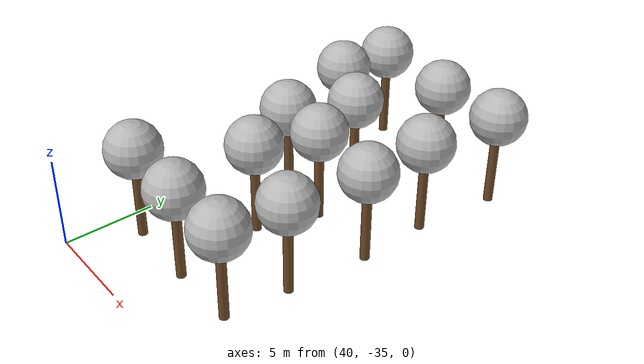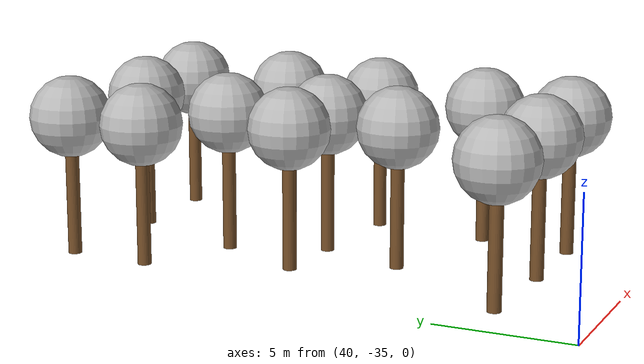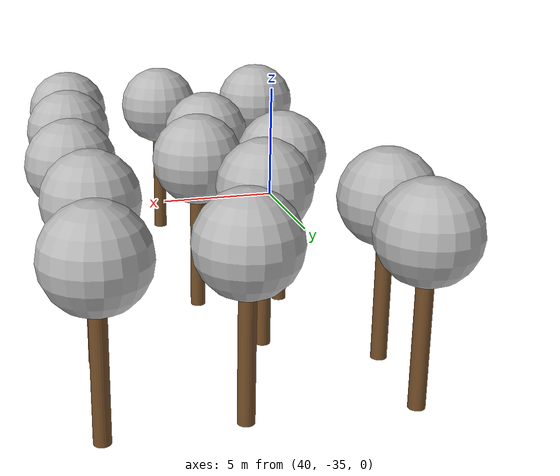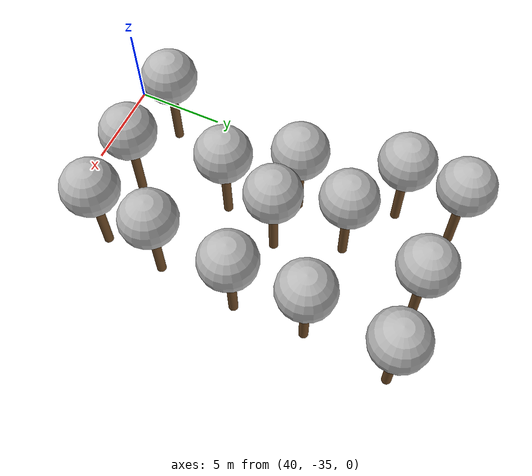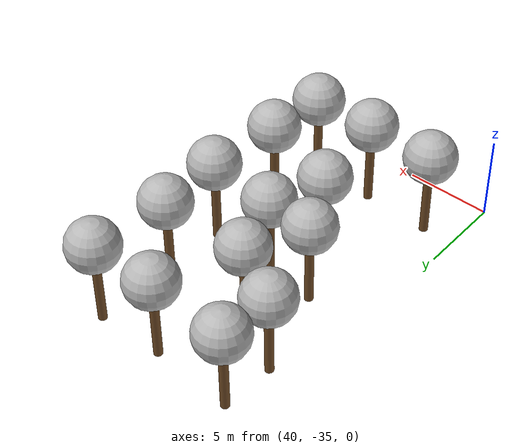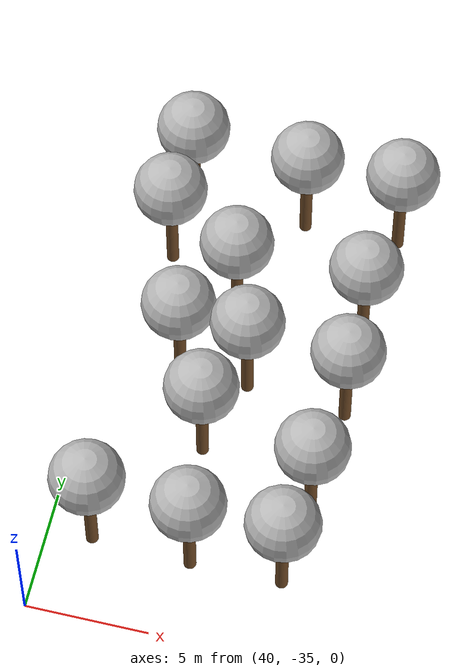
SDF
<sdf version="1.7">
 <world name="default">
  <model name="tree_red_1">
   <static>1</static>
   <link name="link">
    <pose>0 0 0.1 0 -0 0</pose>
    <inertial>
     <mass>666</mass>
     <inertia>
      <ixx>0.0861167</ixx>
      <ixy>0</ixy>
      <ixz>0</ixz>
      <iyy>0.0861167</iyy>
      <iyz>0</iyz>
      <izz>0.0861167</izz>
     </inertia>
    </inertial>
    <collision name="collision_trunk">
     <pose>0 0 2 0 -0 0</pose>
     <geometry><cylinder><radius>0.25</radius><length>4</length></cylinder></geometry>
     <surface>
      <contact>
       <poissons_ratio>0.347</poissons_ratio>
       <elastic_modulus>8.8e+09</elastic_modulus>
       <ode><kp>100000</kp><kd>100</kd><max_vel>100</max_vel><min_depth>0.001</min_depth></ode>
      </contact>
      <friction>
       <torsional>
        <coefficient>1</coefficient>
        <use_patch_radius>0</use_patch_radius>
        <surface_radius>0.01</surface_radius>
       </torsional>
      </friction>
     </surface>
    </collision>
    <collision name="collision_treetop">
     <pose>0 0 5.2 0 -0 0</pose>
     <geometry><sphere><radius>1.5</radius></sphere></geometry>
     <surface>
      <contact>
       <poissons_ratio>0.347</poissons_ratio>
       <elastic_modulus>8.8e+09</elastic_modulus>
       <ode><kp>100000</kp><kd>100</kd><max_vel>100</max_vel><min_depth>0.001</min_depth></ode>
      </contact>
      <friction>
       <torsional>
        <coefficient>1</coefficient>
        <use_patch_radius>0</use_patch_radius>
        <surface_radius>0.01</surface_radius>
       </torsional>
      </friction>
     </surface>
    </collision>
    <visual name="trunk">
     <pose>0 0 2 0 -0 0</pose>
     <geometry><cylinder><radius>0.25</radius><length>4</length></cylinder></geometry>
     <material>
      <script>
       <uri>model://MRS_tree_simples_fire/scripts</uri>
       <uri>model://MRS_tree_simples_fire/materials/textures</uri>
       <name>MRS_tree_simples_fire/Trunk</name>
      </script>
     </material>
    </visual>
    <visual name="treetop">
     <pose>0 0 5.2 0 -0 0</pose>
     <geometry><sphere><radius>1.5</radius></sphere></geometry>
     <material>
      <script>
       <uri>model://MRS_tree_simples_fire/scripts</uri>
       <uri>model://MRS_tree_simples_fire/materials/textures</uri>
       <name>MRS_tree_simples_fire/Treetop</name>
      </script>
     </material>
    </visual>
   </link>
   <pose>43.3385 -23.2266 0 0 -0 0</pose>
  </model>
  <model name="tree_yellow">
   <static>1</static>
   <link name="link">
    <pose>0 0 0.1 0 -0 0</pose>
    <inertial>
     <mass>666</mass>
     <inertia>
      <ixx>0.0861167</ixx>
      <ixy>0</ixy>
      <ixz>0</ixz>
      <iyy>0.0861167</iyy>
      <iyz>0</iyz>
      <izz>0.0861167</izz>
     </inertia>
    </inertial>
    <collision name="collision_trunk">
     <pose>0 0 2 0 -0 0</pose>
     <geometry><cylinder><radius>0.25</radius><length>4</length></cylinder></geometry>
     <surface>
      <contact>
       <poissons_ratio>0.347</poissons_ratio>
       <elastic_modulus>8.8e+09</elastic_modulus>
       <ode><kp>100000</kp><kd>100</kd><max_vel>100</max_vel><min_depth>0.001</min_depth></ode>
      </contact>
      <friction>
       <torsional>
        <coefficient>1</coefficient>
        <use_patch_radius>0</use_patch_radius>
        <surface_radius>0.01</surface_radius>
       </torsional>
      </friction>
     </surface>
    </collision>
    <collision name="collision_treetop">
     <pose>0 0 5.2 0 -0 0</pose>
     <geometry><sphere><radius>1.5</radius></sphere></geometry>
     <surface>
      <contact>
       <poissons_ratio>0.347</poissons_ratio>
       <elastic_modulus>8.8e+09</elastic_modulus>
       <ode><kp>100000</kp><kd>100</kd><max_vel>100</max_vel><min_depth>0.001</min_depth></ode>
      </contact>
      <friction>
       <torsional>
        <coefficient>1</coefficient>
        <use_patch_radius>0</use_patch_radius>
        <surface_radius>0.01</surface_radius>
       </torsional>
      </friction>
     </surface>
    </collision>
    <visual name="trunk">
     <pose>0 0 2 0 -0 0</pose>
     <geometry><cylinder><radius>0.25</radius><length>4</length></cylinder></geometry>
     <material>
      <script>
       <uri>model://MRS_tree_simples_close/scripts</uri>
       <uri>model://MRS_tree_simples_close/materials/textures</uri>
       <name>MRS_tree_simples_close/Trunk</name>
      </script>
     </material>
    </visual>
    <visual name="treetop">
     <pose>0 0 5.2 0 -0 0</pose>
     <geometry><sphere><radius>1.5</radius></sphere></geometry>
     <material>
      <script>
       <uri>model://MRS_tree_simples_close/scripts</uri>
       <uri>model://MRS_tree_simples_close/materials/textures</uri>
       <name>MRS_tree_simples_close/Treetop</name>
      </script>
     </material>
    </visual>
   </link>
   <pose>44.9168 -19.9536 0 0 -0 0</pose>
  </model>
  <model name="tree_yellow_0">
   <static>1</static>
   <link name="link">
    <pose>0 0 0.1 0 -0 0</pose>
    <inertial>
     <mass>666</mass>
     <inertia>
      <ixx>0.0861167</ixx>
      <ixy>0</ixy>
      <ixz>0</ixz>
      <iyy>0.0861167</iyy>
      <iyz>0</iyz>
      <izz>0.0861167</izz>
     </inertia>
    </inertial>
    <collision name="collision_trunk">
     <pose>0 0 2 0 -0 0</pose>
     <geometry><cylinder><radius>0.25</radius><length>4</length></cylinder></geometry>
     <surface>
      <contact>
       <poissons_ratio>0.347</poissons_ratio>
       <elastic_modulus>8.8e+09</elastic_modulus>
       <ode><kp>100000</kp><kd>100</kd><max_vel>100</max_vel><min_depth>0.001</min_depth></ode>
      </contact>
      <friction>
       <torsional>
        <coefficient>1</coefficient>
        <use_patch_radius>0</use_patch_radius>
        <surface_radius>0.01</surface_radius>
       </torsional>
      </friction>
     </surface>
    </collision>
    <collision name="collision_treetop">
     <pose>0 0 5.2 0 -0 0</pose>
     <geometry><sphere><radius>1.5</radius></sphere></geometry>
     <surface>
      <contact>
       <poissons_ratio>0.347</poissons_ratio>
       <elastic_modulus>8.8e+09</elastic_modulus>
       <ode><kp>100000</kp><kd>100</kd><max_vel>100</max_vel><min_depth>0.001</min_depth></ode>
      </contact>
      <friction>
       <torsional>
        <coefficient>1</coefficient>
        <use_patch_radius>0</use_patch_radius>
        <surface_radius>0.01</surface_radius>
       </torsional>
      </friction>
     </surface>
    </collision>
    <visual name="trunk">
     <pose>0 0 2 0 -0 0</pose>
     <geometry><cylinder><radius>0.25</radius><length>4</length></cylinder></geometry>
     <material>
      <script>
       <uri>model://MRS_tree_simples_close/scripts</uri>
       <uri>model://MRS_tree_simples_close/materials/textures</uri>
       <name>MRS_tree_simples_close/Trunk</name>
      </script>
     </material>
    </visual>
    <visual name="treetop">
     <pose>0 0 5.2 0 -0 0</pose>
     <geometry><sphere><radius>1.5</radius></sphere></geometry>
     <material>
      <script>
       <uri>model://MRS_tree_simples_close/scripts</uri>
       <uri>model://MRS_tree_simples_close/materials/textures</uri>
       <name>MRS_tree_simples_close/Treetop</name>
      </script>
     </material>
    </visual>
   </link>
   <pose>46.1899 -23.4258 0 0 -0 0</pose>
  </model>
  <model name="tree_yellow_2">
   <static>1</static>
   <link name="link">
    <pose>0 0 0.1 0 -0 0</pose>
    <inertial>
     <mass>666</mass>
     <inertia>
      <ixx>0.0861167</ixx>
      <ixy>0</ixy>
      <ixz>0</ixz>
      <iyy>0.0861167</iyy>
      <iyz>0</iyz>
      <izz>0.0861167</izz>
     </inertia>
    </inertial>
    <collision name="collision_trunk">
     <pose>0 0 2 0 -0 0</pose>
     <geometry><cylinder><radius>0.25</radius><length>4</length></cylinder></geometry>
     <surface>
      <contact>
       <poissons_ratio>0.347</poissons_ratio>
       <elastic_modulus>8.8e+09</elastic_modulus>
       <ode><kp>100000</kp><kd>100</kd><max_vel>100</max_vel><min_depth>0.001</min_depth></ode>
      </contact>
      <friction>
       <torsional>
        <coefficient>1</coefficient>
        <use_patch_radius>0</use_patch_radius>
        <surface_radius>0.01</surface_radius>
       </torsional>
      </friction>
     </surface>
    </collision>
    <collision name="collision_treetop">
     <pose>0 0 5.2 0 -0 0</pose>
     <geometry><sphere><radius>1.5</radius></sphere></geometry>
     <surface>
      <contact>
       <poissons_ratio>0.347</poissons_ratio>
       <elastic_modulus>8.8e+09</elastic_modulus>
       <ode><kp>100000</kp><kd>100</kd><max_vel>100</max_vel><min_depth>0.001</min_depth></ode>
      </contact>
      <friction>
       <torsional>
        <coefficient>1</coefficient>
        <use_patch_radius>0</use_patch_radius>
        <surface_radius>0.01</surface_radius>
       </torsional>
      </friction>
     </surface>
    </collision>
    <visual name="trunk">
     <pose>0 0 2 0 -0 0</pose>
     <geometry><cylinder><radius>0.25</radius><length>4</length></cylinder></geometry>
     <material>
      <script>
       <uri>model://MRS_tree_simples_close/scripts</uri>
       <uri>model://MRS_tree_simples_close/materials/textures</uri>
       <name>MRS_tree_simples_close/Trunk</name>
      </script>
     </material>
    </visual>
    <visual name="treetop">
     <pose>0 0 5.2 0 -0 0</pose>
     <geometry><sphere><radius>1.5</radius></sphere></geometry>
     <material>
      <script>
       <uri>model://MRS_tree_simples_close/scripts</uri>
       <uri>model://MRS_tree_simples_close/materials/textures</uri>
       <name>MRS_tree_simples_close/Treetop</name>
      </script>
     </material>
    </visual>
   </link>
   <pose>41.7202 -18.1162 0 0 -0 0</pose>
  </model>
  <model name="tree_yellow_3">
   <static>1</static>
   <link name="link">
    <pose>0 0 0.1 0 -0 0</pose>
    <inertial>
     <mass>666</mass>
     <inertia>
      <ixx>0.0861167</ixx>
      <ixy>0</ixy>
      <ixz>0</ixz>
      <iyy>0.0861167</iyy>
      <iyz>0</iyz>
      <izz>0.0861167</izz>
     </inertia>
    </inertial>
    <collision name="collision_trunk">
     <pose>0 0 2 0 -0 0</pose>
     <geometry><cylinder><radius>0.25</radius><length>4</length></cylinder></geometry>
     <surface>
      <contact>
       <poissons_ratio>0.347</poissons_ratio>
       <elastic_modulus>8.8e+09</elastic_modulus>
       <ode><kp>100000</kp><kd>100</kd><max_vel>100</max_vel><min_depth>0.001</min_depth></ode>
      </contact>
      <friction>
       <torsional>
        <coefficient>1</coefficient>
        <use_patch_radius>0</use_patch_radius>
        <surface_radius>0.01</surface_radius>
       </torsional>
      </friction>
     </surface>
    </collision>
    <collision name="collision_treetop">
     <pose>0 0 5.2 0 -0 0</pose>
     <geometry><sphere><radius>1.5</radius></sphere></geometry>
     <surface>
      <contact>
       <poissons_ratio>0.347</poissons_ratio>
       <elastic_modulus>8.8e+09</elastic_modulus>
       <ode><kp>100000</kp><kd>100</kd><max_vel>100</max_vel><min_depth>0.001</min_depth></ode>
      </contact>
      <friction>
       <torsional>
        <coefficient>1</coefficient>
        <use_patch_radius>0</use_patch_radius>
        <surface_radius>0.01</surface_radius>
       </torsional>
      </friction>
     </surface>
    </collision>
    <visual name="trunk">
     <pose>0 0 2 0 -0 0</pose>
     <geometry><cylinder><radius>0.25</radius><length>4</length></cylinder></geometry>
     <material>
      <script>
       <uri>model://MRS_tree_simples_close/scripts</uri>
       <uri>model://MRS_tree_simples_close/materials/textures</uri>
       <name>MRS_tree_simples_close/Trunk</name>
      </script>
     </material>
    </visual>
    <visual name="treetop">
     <pose>0 0 5.2 0 -0 0</pose>
     <geometry><sphere><radius>1.5</radius></sphere></geometry>
     <material>
      <script>
       <uri>model://MRS_tree_simples_close/scripts</uri>
       <uri>model://MRS_tree_simples_close/materials/textures</uri>
       <name>MRS_tree_simples_close/Treetop</name>
      </script>
     </material>
    </visual>
   </link>
   <pose>45.1185 -26.6707 0 0 -0 0</pose>
  </model>
  <model name="tree_green">
   <static>1</static>
   <link name="link">
    <pose>0 0 0.1 0 -0 0</pose>
    <inertial>
     <mass>666</mass>
     <inertia>
      <ixx>0.0861167</ixx>
      <ixy>0</ixy>
      <ixz>0</ixz>
      <iyy>0.0861167</iyy>
      <iyz>0</iyz>
      <izz>0.0861167</izz>
     </inertia>
    </inertial>
    <collision name="collision_trunk">
     <pose>0 0 2 0 -0 0</pose>
     <geometry><cylinder><radius>0.25</radius><length>4</length></cylinder></geometry>
     <surface>
      <contact>
       <poissons_ratio>0.347</poissons_ratio>
       <elastic_modulus>8.8e+09</elastic_modulus>
       <ode><kp>100000</kp><kd>100</kd><max_vel>100</max_vel><min_depth>0.001</min_depth></ode>
      </contact>
      <friction>
       <torsional>
        <coefficient>1</coefficient>
        <use_patch_radius>0</use_patch_radius>
        <surface_radius>0.01</surface_radius>
       </torsional>
      </friction>
     </surface>
    </collision>
    <collision name="collision_treetop">
     <pose>0 0 5.2 0 -0 0</pose>
     <geometry><sphere><radius>1.5</radius></sphere></geometry>
     <surface>
      <contact>
       <poissons_ratio>0.347</poissons_ratio>
       <elastic_modulus>8.8e+09</elastic_modulus>
       <ode><kp>100000</kp><kd>100</kd><max_vel>100</max_vel><min_depth>0.001</min_depth></ode>
      </contact>
      <friction>
       <torsional>
        <coefficient>1</coefficient>
        <use_patch_radius>0</use_patch_radius>
        <surface_radius>0.01</surface_radius>
       </torsional>
      </friction>
     </surface>
    </collision>
    <visual name="trunk">
     <pose>0 0 2 0 -0 0</pose>
     <geometry><cylinder><radius>0.25</radius><length>4</length></cylinder></geometry>
     <material>
      <script>
       <uri>model://MRS_tree_simple/scripts</uri>
       <uri>model://MRS_tree_simple/materials/textures</uri>
       <name>MRS_tree_simple/Trunk</name>
      </script>
     </material>
    </visual>
    <visual name="treetop">
     <pose>0 0 5.2 0 -0 0</pose>
     <geometry><sphere><radius>1.5</radius></sphere></geometry>
     <material>
      <script>
       <uri>model://MRS_tree_simple/scripts</uri>
       <uri>model://MRS_tree_simple/materials/textures</uri>
       <name>MRS_tree_simple/Treetop</name>
      </script>
     </material>
    </visual>
   </link>
   <pose>41.9029 -15.006 0 0 -0 0</pose>
  </model>
  <model name="tree_green_0">
   <static>1</static>
   <link name="link">
    <pose>0 0 0.1 0 -0 0</pose>
    <inertial>
     <mass>666</mass>
     <inertia>
      <ixx>0.0861167</ixx>
      <ixy>0</ixy>
      <ixz>0</ixz>
      <iyy>0.0861167</iyy>
      <iyz>0</iyz>
      <izz>0.0861167</izz>
     </inertia>
    </inertial>
    <collision name="collision_trunk">
     <pose>0 0 2 0 -0 0</pose>
     <geometry><cylinder><radius>0.25</radius><length>4</length></cylinder></geometry>
     <surface>
      <contact>
       <poissons_ratio>0.347</poissons_ratio>
       <elastic_modulus>8.8e+09</elastic_modulus>
       <ode><kp>100000</kp><kd>100</kd><max_vel>100</max_vel><min_depth>0.001</min_depth></ode>
      </contact>
      <friction>
       <torsional>
        <coefficient>1</coefficient>
        <use_patch_radius>0</use_patch_radius>
        <surface_radius>0.01</surface_radius>
       </torsional>
      </friction>
     </surface>
    </collision>
    <collision name="collision_treetop">
     <pose>0 0 5.2 0 -0 0</pose>
     <geometry><sphere><radius>1.5</radius></sphere></geometry>
     <surface>
      <contact>
       <poissons_ratio>0.347</poissons_ratio>
       <elastic_modulus>8.8e+09</elastic_modulus>
       <ode><kp>100000</kp><kd>100</kd><max_vel>100</max_vel><min_depth>0.001</min_depth></ode>
      </contact>
      <friction>
       <torsional>
        <coefficient>1</coefficient>
        <use_patch_radius>0</use_patch_radius>
        <surface_radius>0.01</surface_radius>
       </torsional>
      </friction>
     </surface>
    </collision>
    <visual name="trunk">
     <pose>0 0 2 0 -0 0</pose>
     <geometry><cylinder><radius>0.25</radius><length>4</length></cylinder></geometry>
     <material>
      <script>
       <uri>model://MRS_tree_simple/scripts</uri>
       <uri>model://MRS_tree_simple/materials/textures</uri>
       <name>MRS_tree_simple/Trunk</name>
      </script>
     </material>
    </visual>
    <visual name="treetop">
     <pose>0 0 5.2 0 -0 0</pose>
     <geometry><sphere><radius>1.5</radius></sphere></geometry>
     <material>
      <script>
       <uri>model://MRS_tree_simple/scripts</uri>
       <uri>model://MRS_tree_simple/materials/textures</uri>
       <name>MRS_tree_simple/Treetop</name>
      </script>
     </material>
    </visual>
   </link>
   <pose>46.7596 -15.3516 0 0 -0 0</pose>
  </model>
  <model name="tree_green_1">
   <static>1</static>
   <link name="link">
    <pose>0 0 0.1 0 -0 0</pose>
    <inertial>
     <mass>666</mass>
     <inertia>
      <ixx>0.0861167</ixx>
      <ixy>0</ixy>
      <ixz>0</ixz>
      <iyy>0.0861167</iyy>
      <iyz>0</iyz>
      <izz>0.0861167</izz>
     </inertia>
    </inertial>
    <collision name="collision_trunk">
     <pose>0 0 2 0 -0 0</pose>
     <geometry><cylinder><radius>0.25</radius><length>4</length></cylinder></geometry>
     <surface>
      <contact>
       <poissons_ratio>0.347</poissons_ratio>
       <elastic_modulus>8.8e+09</elastic_modulus>
       <ode><kp>100000</kp><kd>100</kd><max_vel>100</max_vel><min_depth>0.001</min_depth></ode>
      </contact>
      <friction>
       <torsional>
        <coefficient>1</coefficient>
        <use_patch_radius>0</use_patch_radius>
        <surface_radius>0.01</surface_radius>
       </torsional>
      </friction>
     </surface>
    </collision>
    <collision name="collision_treetop">
     <pose>0 0 5.2 0 -0 0</pose>
     <geometry><sphere><radius>1.5</radius></sphere></geometry>
     <surface>
      <contact>
       <poissons_ratio>0.347</poissons_ratio>
       <elastic_modulus>8.8e+09</elastic_modulus>
       <ode><kp>100000</kp><kd>100</kd><max_vel>100</max_vel><min_depth>0.001</min_depth></ode>
      </contact>
      <friction>
       <torsional>
        <coefficient>1</coefficient>
        <use_patch_radius>0</use_patch_radius>
        <surface_radius>0.01</surface_radius>
       </torsional>
      </friction>
     </surface>
    </collision>
    <visual name="trunk">
     <pose>0 0 2 0 -0 0</pose>
     <geometry><cylinder><radius>0.25</radius><length>4</length></cylinder></geometry>
     <material>
      <script>
       <uri>model://MRS_tree_simple/scripts</uri>
       <uri>model://MRS_tree_simple/materials/textures</uri>
       <name>MRS_tree_simple/Trunk</name>
      </script>
     </material>
    </visual>
    <visual name="treetop">
     <pose>0 0 5.2 0 -0 0</pose>
     <geometry><sphere><radius>1.5</radius></sphere></geometry>
     <material>
      <script>
       <uri>model://MRS_tree_simple/scripts</uri>
       <uri>model://MRS_tree_simple/materials/textures</uri>
       <name>MRS_tree_simple/Treetop</name>
      </script>
     </material>
    </visual>
   </link>
   <pose>50.6964 -15.2724 0 0 -0 0</pose>
  </model>
  <model name="tree_green_2">
   <static>1</static>
   <link name="link">
    <pose>0 0 0.1 0 -0 0</pose>
    <inertial>
     <mass>666</mass>
     <inertia>
      <ixx>0.0861167</ixx>
      <ixy>0</ixy>
      <ixz>0</ixz>
      <iyy>0.0861167</iyy>
      <iyz>0</iyz>
      <izz>0.0861167</izz>
     </inertia>
    </inertial>
    <collision name="collision_trunk">
     <pose>0 0 2 0 -0 0</pose>
     <geometry><cylinder><radius>0.25</radius><length>4</length></cylinder></geometry>
     <surface>
      <contact>
       <poissons_ratio>0.347</poissons_ratio>
       <elastic_modulus>8.8e+09</elastic_modulus>
       <ode><kp>100000</kp><kd>100</kd><max_vel>100</max_vel><min_depth>0.001</min_depth></ode>
      </contact>
      <friction>
       <torsional>
        <coefficient>1</coefficient>
        <use_patch_radius>0</use_patch_radius>
        <surface_radius>0.01</surface_radius>
       </torsional>
      </friction>
     </surface>
    </collision>
    <collision name="collision_treetop">
     <pose>0 0 5.2 0 -0 0</pose>
     <geometry><sphere><radius>1.5</radius></sphere></geometry>
     <surface>
      <contact>
       <poissons_ratio>0.347</poissons_ratio>
       <elastic_modulus>8.8e+09</elastic_modulus>
       <ode><kp>100000</kp><kd>100</kd><max_vel>100</max_vel><min_depth>0.001</min_depth></ode>
      </contact>
      <friction>
       <torsional>
        <coefficient>1</coefficient>
        <use_patch_radius>0</use_patch_radius>
        <surface_radius>0.01</surface_radius>
       </torsional>
      </friction>
     </surface>
    </collision>
    <visual name="trunk">
     <pose>0 0 2 0 -0 0</pose>
     <geometry><cylinder><radius>0.25</radius><length>4</length></cylinder></geometry>
     <material>
      <script>
       <uri>model://MRS_tree_simple/scripts</uri>
       <uri>model://MRS_tree_simple/materials/textures</uri>
       <name>MRS_tree_simple/Trunk</name>
      </script>
     </material>
    </visual>
    <visual name="treetop">
     <pose>0 0 5.2 0 -0 0</pose>
     <geometry><sphere><radius>1.5</radius></sphere></geometry>
     <material>
      <script>
       <uri>model://MRS_tree_simple/scripts</uri>
       <uri>model://MRS_tree_simple/materials/textures</uri>
       <name>MRS_tree_simple/Treetop</name>
      </script>
     </material>
    </visual>
   </link>
   <pose>50.3334 -23.7957 0 0 -0 0</pose>
  </model>
  <model name="tree_green_3">
   <static>1</static>
   <link name="link">
    <pose>0 0 0.1 0 -0 0</pose>
    <inertial>
     <mass>666</mass>
     <inertia>
      <ixx>0.0861167</ixx>
      <ixy>0</ixy>
      <ixz>0</ixz>
      <iyy>0.0861167</iyy>
      <iyz>0</iyz>
      <izz>0.0861167</izz>
     </inertia>
    </inertial>
    <collision name="collision_trunk">
     <pose>0 0 2 0 -0 0</pose>
     <geometry><cylinder><radius>0.25</radius><length>4</length></cylinder></geometry>
     <surface>
      <contact>
       <poissons_ratio>0.347</poissons_ratio>
       <elastic_modulus>8.8e+09</elastic_modulus>
       <ode><kp>100000</kp><kd>100</kd><max_vel>100</max_vel><min_depth>0.001</min_depth></ode>
      </contact>
      <friction>
       <torsional>
        <coefficient>1</coefficient>
        <use_patch_radius>0</use_patch_radius>
        <surface_radius>0.01</surface_radius>
       </torsional>
      </friction>
     </surface>
    </collision>
    <collision name="collision_treetop">
     <pose>0 0 5.2 0 -0 0</pose>
     <geometry><sphere><radius>1.5</radius></sphere></geometry>
     <surface>
      <contact>
       <poissons_ratio>0.347</poissons_ratio>
       <elastic_modulus>8.8e+09</elastic_modulus>
       <ode><kp>100000</kp><kd>100</kd><max_vel>100</max_vel><min_depth>0.001</min_depth></ode>
      </contact>
      <friction>
       <torsional>
        <coefficient>1</coefficient>
        <use_patch_radius>0</use_patch_radius>
        <surface_radius>0.01</surface_radius>
       </torsional>
      </friction>
     </surface>
    </collision>
    <visual name="trunk">
     <pose>0 0 2 0 -0 0</pose>
     <geometry><cylinder><radius>0.25</radius><length>4</length></cylinder></geometry>
     <material>
      <script>
       <uri>model://MRS_tree_simple/scripts</uri>
       <uri>model://MRS_tree_simple/materials/textures</uri>
       <name>MRS_tree_simple/Trunk</name>
      </script>
     </material>
    </visual>
    <visual name="treetop">
     <pose>0 0 5.2 0 -0 0</pose>
     <geometry><sphere><radius>1.5</radius></sphere></geometry>
     <material>
      <script>
       <uri>model://MRS_tree_simple/scripts</uri>
       <uri>model://MRS_tree_simple/materials/textures</uri>
       <name>MRS_tree_simple/Treetop</name>
      </script>
     </material>
    </visual>
   </link>
   <pose>49.9222 -28.2383 0 0 -0 0</pose>
  </model>
  <model name="tree_green_4">
   <static>1</static>
   <link name="link">
    <pose>0 0 0.1 0 -0 0</pose>
    <inertial>
     <mass>666</mass>
     <inertia>
      <ixx>0.0861167</ixx>
      <ixy>0</ixy>
      <ixz>0</ixz>
      <iyy>0.0861167</iyy>
      <iyz>0</iyz>
      <izz>0.0861167</izz>
     </inertia>
    </inertial>
    <collision name="collision_trunk">
     <pose>0 0 2 0 -0 0</pose>
     <geometry><cylinder><radius>0.25</radius><length>4</length></cylinder></geometry>
     <surface>
      <contact>
       <poissons_ratio>0.347</poissons_ratio>
       <elastic_modulus>8.8e+09</elastic_modulus>
       <ode><kp>100000</kp><kd>100</kd><max_vel>100</max_vel><min_depth>0.001</min_depth></ode>
      </contact>
      <friction>
       <torsional>
        <coefficient>1</coefficient>
        <use_patch_radius>0</use_patch_radius>
        <surface_radius>0.01</surface_radius>
       </torsional>
      </friction>
     </surface>
    </collision>
    <collision name="collision_treetop">
     <pose>0 0 5.2 0 -0 0</pose>
     <geometry><sphere><radius>1.5</radius></sphere></geometry>
     <surface>
      <contact>
       <poissons_ratio>0.347</poissons_ratio>
       <elastic_modulus>8.8e+09</elastic_modulus>
       <ode><kp>100000</kp><kd>100</kd><max_vel>100</max_vel><min_depth>0.001</min_depth></ode>
      </contact>
      <friction>
       <torsional>
        <coefficient>1</coefficient>
        <use_patch_radius>0</use_patch_radius>
        <surface_radius>0.01</surface_radius>
       </torsional>
      </friction>
     </surface>
    </collision>
    <visual name="trunk">
     <pose>0 0 2 0 -0 0</pose>
     <geometry><cylinder><radius>0.25</radius><length>4</length></cylinder></geometry>
     <material>
      <script>
       <uri>model://MRS_tree_simple/scripts</uri>
       <uri>model://MRS_tree_simple/materials/textures</uri>
       <name>MRS_tree_simple/Trunk</name>
      </script>
     </material>
    </visual>
    <visual name="treetop">
     <pose>0 0 5.2 0 -0 0</pose>
     <geometry><sphere><radius>1.5</radius></sphere></geometry>
     <material>
      <script>
       <uri>model://MRS_tree_simple/scripts</uri>
       <uri>model://MRS_tree_simple/materials/textures</uri>
       <name>MRS_tree_simple/Treetop</name>
      </script>
     </material>
    </visual>
   </link>
   <pose>49.5625 -31.6967 0 0 -0 0</pose>
  </model>
  <model name="tree_green_5">
   <static>1</static>
   <link name="link">
    <pose>0 0 0.1 0 -0 0</pose>
    <inertial>
     <mass>666</mass>
     <inertia>
      <ixx>0.0861167</ixx>
      <ixy>0</ixy>
      <ixz>0</ixz>
      <iyy>0.0861167</iyy>
      <iyz>0</iyz>
      <izz>0.0861167</izz>
     </inertia>
    </inertial>
    <collision name="collision_trunk">
     <pose>0 0 2 0 -0 0</pose>
     <geometry><cylinder><radius>0.25</radius><length>4</length></cylinder></geometry>
     <surface>
      <contact>
       <poissons_ratio>0.347</poissons_ratio>
       <elastic_modulus>8.8e+09</elastic_modulus>
       <ode><kp>100000</kp><kd>100</kd><max_vel>100</max_vel><min_depth>0.001</min_depth></ode>
      </contact>
      <friction>
       <torsional>
        <coefficient>1</coefficient>
        <use_patch_radius>0</use_patch_radius>
        <surface_radius>0.01</surface_radius>
       </torsional>
      </friction>
     </surface>
    </collision>
    <collision name="collision_treetop">
     <pose>0 0 5.2 0 -0 0</pose>
     <geometry><sphere><radius>1.5</radius></sphere></geometry>
     <surface>
      <contact>
       <poissons_ratio>0.347</poissons_ratio>
       <elastic_modulus>8.8e+09</elastic_modulus>
       <ode><kp>100000</kp><kd>100</kd><max_vel>100</max_vel><min_depth>0.001</min_depth></ode>
      </contact>
      <friction>
       <torsional>
        <coefficient>1</coefficient>
        <use_patch_radius>0</use_patch_radius>
        <surface_radius>0.01</surface_radius>
       </torsional>
      </friction>
     </surface>
    </collision>
    <visual name="trunk">
     <pose>0 0 2 0 -0 0</pose>
     <geometry><cylinder><radius>0.25</radius><length>4</length></cylinder></geometry>
     <material>
      <script>
       <uri>model://MRS_tree_simple/scripts</uri>
       <uri>model://MRS_tree_simple/materials/textures</uri>
       <name>MRS_tree_simple/Trunk</name>
      </script>
     </material>
    </visual>
    <visual name="treetop">
     <pose>0 0 5.2 0 -0 0</pose>
     <geometry><sphere><radius>1.5</radius></sphere></geometry>
     <material>
      <script>
       <uri>model://MRS_tree_simple/scripts</uri>
       <uri>model://MRS_tree_simple/materials/textures</uri>
       <name>MRS_tree_simple/Treetop</name>
      </script>
     </material>
    </visual>
   </link>
   <pose>45.8611 -31.7234 0 0 -0 0</pose>
  </model>
  <model name="tree_green_6">
   <static>1</static>
   <link name="link">
    <pose>0 0 0.1 0 -0 0</pose>
    <inertial>
     <mass>666</mass>
     <inertia>
      <ixx>0.0861167</ixx>
      <ixy>0</ixy>
      <ixz>0</ixz>
      <iyy>0.0861167</iyy>
      <iyz>0</iyz>
      <izz>0.0861167</izz>
     </inertia>
    </inertial>
    <collision name="collision_trunk">
     <pose>0 0 2 0 -0 0</pose>
     <geometry><cylinder><radius>0.25</radius><length>4</length></cylinder></geometry>
     <surface>
      <contact>
       <poissons_ratio>0.347</poissons_ratio>
       <elastic_modulus>8.8e+09</elastic_modulus>
       <ode><kp>100000</kp><kd>100</kd><max_vel>100</max_vel><min_depth>0.001</min_depth></ode>
      </contact>
      <friction>
       <torsional>
        <coefficient>1</coefficient>
        <use_patch_radius>0</use_patch_radius>
        <surface_radius>0.01</surface_radius>
       </torsional>
      </friction>
     </surface>
    </collision>
    <collision name="collision_treetop">
     <pose>0 0 5.2 0 -0 0</pose>
     <geometry><sphere><radius>1.5</radius></sphere></geometry>
     <surface>
      <contact>
       <poissons_ratio>0.347</poissons_ratio>
       <elastic_modulus>8.8e+09</elastic_modulus>
       <ode><kp>100000</kp><kd>100</kd><max_vel>100</max_vel><min_depth>0.001</min_depth></ode>
      </contact>
      <friction>
       <torsional>
        <coefficient>1</coefficient>
        <use_patch_radius>0</use_patch_radius>
        <surface_radius>0.01</surface_radius>
       </torsional>
      </friction>
     </surface>
    </collision>
    <visual name="trunk">
     <pose>0 0 2 0 -0 0</pose>
     <geometry><cylinder><radius>0.25</radius><length>4</length></cylinder></geometry>
     <material>
      <script>
       <uri>model://MRS_tree_simple/scripts</uri>
       <uri>model://MRS_tree_simple/materials/textures</uri>
       <name>MRS_tree_simple/Trunk</name>
      </script>
     </material>
    </visual>
    <visual name="treetop">
     <pose>0 0 5.2 0 -0 0</pose>
     <geometry><sphere><radius>1.5</radius></sphere></geometry>
     <material>
      <script>
       <uri>model://MRS_tree_simple/scripts</uri>
       <uri>model://MRS_tree_simple/materials/textures</uri>
       <name>MRS_tree_simple/Treetop</name>
      </script>
     </material>
    </visual>
   </link>
   <pose>41.8231 -31.5436 0 0 -0 0</pose>
  </model>
  <model name="tree_green_1_clone">
   <static>1</static>
   <link name="link">
    <pose>0 0 0.1 0 -0 0</pose>
    <inertial>
     <mass>666</mass>
     <inertia>
      <ixx>0.0861167</ixx>
      <ixy>0</ixy>
      <ixz>0</ixz>
      <iyy>0.0861167</iyy>
      <iyz>0</iyz>
      <izz>0.0861167</izz>
     </inertia>
    </inertial>
    <collision name="collision_trunk">
     <pose>0 0 2 0 -0 0</pose>
     <geometry><cylinder><radius>0.25</radius><length>4</length></cylinder></geometry>
     <surface>
      <contact>
       <poissons_ratio>0.347</poissons_ratio>
       <elastic_modulus>8.8e+09</elastic_modulus>
       <ode><kp>100000</kp><kd>100</kd><max_vel>100</max_vel><min_depth>0.001</min_depth></ode>
      </contact>
      <friction>
       <torsional>
        <coefficient>1</coefficient>
        <use_patch_radius>0</use_patch_radius>
        <surface_radius>0.01</surface_radius>
       </torsional>
      </friction>
     </surface>
    </collision>
    <collision name="collision_treetop">
     <pose>0 0 5.2 0 -0 0</pose>
     <geometry><sphere><radius>1.5</radius></sphere></geometry>
     <surface>
      <contact>
       <poissons_ratio>0.347</poissons_ratio>
       <elastic_modulus>8.8e+09</elastic_modulus>
       <ode><kp>100000</kp><kd>100</kd><max_vel>100</max_vel><min_depth>0.001</min_depth></ode>
      </contact>
      <friction>
       <torsional>
        <coefficient>1</coefficient>
        <use_patch_radius>0</use_patch_radius>
        <surface_radius>0.01</surface_radius>
       </torsional>
      </friction>
     </surface>
    </collision>
    <visual name="trunk">
     <pose>0 0 2 0 -0 0</pose>
     <geometry><cylinder><radius>0.25</radius><length>4</length></cylinder></geometry>
     <material>
      <script>
       <uri>model://MRS_tree_simple/scripts</uri>
       <uri>model://MRS_tree_simple/materials/textures</uri>
       <name>MRS_tree_simple/Trunk</name>
      </script>
     </material>
    </visual>
    <visual name="treetop">
     <pose>0 0 5.2 0 -0 0</pose>
     <geometry><sphere><radius>1.5</radius></sphere></geometry>
     <material>
      <script>
       <uri>model://MRS_tree_simple/scripts</uri>
       <uri>model://MRS_tree_simple/materials/textures</uri>
       <name>MRS_tree_simple/Treetop</name>
      </script>
     </material>
    </visual>
   </link>
   <pose>50.202 -19.9186 0 0 -0 0</pose>
  </model>
 </world>
</sdf>
